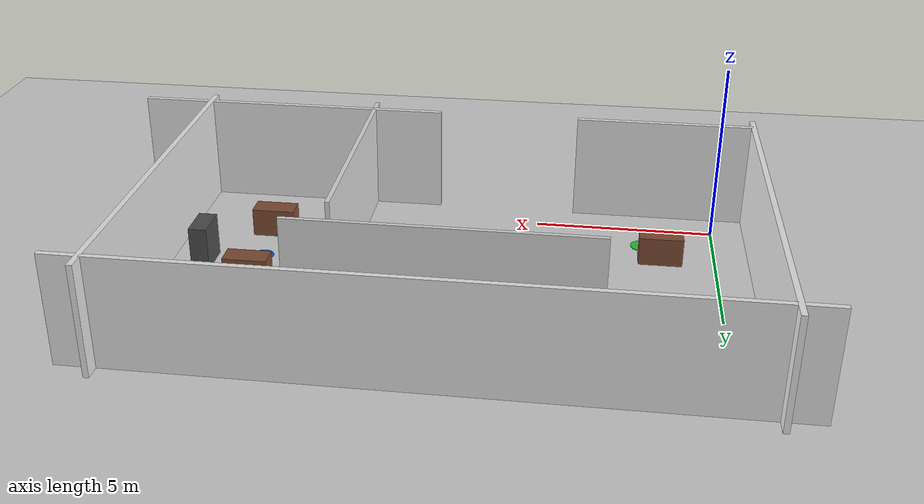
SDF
<?xml version="1.0" ?>
<sdf version="1.8">
  <world name="office_world_professional">

    <!-- Scene settings -->
    <scene>
      <ambient>0.6 0.6 0.6 1</ambient>
      <background>0.7 0.85 1.0 1</background>
      <shadows>true</shadows>
    </scene>

    <!-- Physics -->
    <physics name="1ms" type="ignored">
      <max_step_size>0.001</max_step_size>
      <real_time_factor>1.0</real_time_factor>
    </physics>

    <!-- Plugins -->
    <plugin filename="gz-sim-physics-system" name="gz::sim::systems::Physics"/>
    <plugin filename="gz-sim-user-commands-system" name="gz::sim::systems::UserCommands"/>
    <plugin filename="gz-sim-scene-broadcaster-system" name="gz::sim::systems::SceneBroadcaster"/>
    <plugin filename="gz-sim-sensors-system" name="gz::sim::systems::Sensors">
      <render_engine>ogre2</render_engine>
    </plugin>
    <plugin filename="gz-sim-contact-system" name="gz::sim::systems::Contact"/>

    <!-- Lighting -->
    <light type="directional" name="sun">
      <cast_shadows>true</cast_shadows>
      <pose>0 0 10 0 0 0</pose>
      <diffuse>0.9 0.9 0.9 1</diffuse>
      <specular>0.2 0.2 0.2 1</specular>
      <direction>-0.3 -0.3 -1</direction>
    </light>

    <!-- Ground plane -->
    <model name="ground_plane">
      <static>true</static>
      <link name="link">
        <collision name="collision">
          <geometry>
            <plane><normal>0 0 1</normal><size>30 25</size></plane>
          </geometry>
        </collision>
        <visual name="visual">
          <geometry>
            <plane><normal>0 0 1</normal><size>30 25</size></plane>
          </geometry>
          <material>
            <ambient>0.7 0.7 0.7 1</ambient>
            <diffuse>0.8 0.8 0.8 1</diffuse>
          </material>
        </visual>
      </link>
    </model>

    <!-- Outer walls (16m x 10m) -->
    <!-- North Wall -->
    <model name="wall_north">
      <static>true</static>
      <pose>7 9 1.5 0 0 0</pose>
      <link name="link">
        <collision name="collision">
          <geometry><box><size>18 0.15 3</size></box></geometry>
        </collision>
        <visual name="visual">
          <geometry><box><size>18 0.15 3</size></box></geometry>
          <material><ambient>0.9 0.9 0.9 1</ambient></material>
        </visual>
      </link>
    </model>

    <!-- South Wall Left -->
    <model name="wall_south_left">
      <static>true</static>
      <pose>1.5 -1 1.5 0 0 0</pose>
      <link name="link">
        <collision name="collision">
          <geometry><box><size>5 0.15 3</size></box></geometry>
        </collision>
        <visual name="visual">
          <geometry><box><size>5 0.15 3</size></box></geometry>
          <material><ambient>0.9 0.9 0.9 1</ambient></material>
        </visual>
      </link>
    </model>

    <!-- South Wall Right -->
    <model name="wall_south_right">
      <static>true</static>
      <pose>12.5 -1 1.5 0 0 0</pose>
      <link name="link">
        <collision name="collision">
          <geometry><box><size>9 0.15 3</size></box></geometry>
        </collision>
        <visual name="visual">
          <geometry><box><size>9 0.15 3</size></box></geometry>
          <material><ambient>0.9 0.9 0.9 1</ambient></material>
        </visual>
      </link>
    </model>

    <!-- West Wall -->
    <model name="wall_west">
      <static>true</static>
      <pose>-1 4 1.5 0 0 0</pose>
      <link name="link">
        <collision name="collision">
          <geometry><box><size>0.15 11 3</size></box></geometry>
        </collision>
        <visual name="visual">
          <geometry><box><size>0.15 11 3</size></box></geometry>
          <material><ambient>0.9 0.9 0.9 1</ambient></material>
        </visual>
      </link>
    </model>

    <!-- East Wall -->
    <model name="wall_east">
      <static>true</static>
      <pose>15 4 1.5 0 0 0</pose>
      <link name="link">
        <collision name="collision">
          <geometry><box><size>0.15 11 3</size></box></geometry>
        </collision>
        <visual name="visual">
          <geometry><box><size>0.15 11 3</size></box></geometry>
          <material><ambient>0.9 0.9 0.9 1</ambient></material>
        </visual>
      </link>
    </model>

    <!-- Interior Wall (Storage) -->
    <model name="interior_wall_storage">
      <static>true</static>
      <pose>7 6.5 1.5 0 0 0</pose>
      <link name="link">
        <collision name="collision">
          <geometry><box><size>8 0.12 3</size></box></geometry>
        </collision>
        <visual name="visual">
          <geometry><box><size>8 0.12 3</size></box></geometry>
          <material><ambient>0.85 0.85 0.85 1</ambient></material>
        </visual>
      </link>
    </model>

    <!-- Interior Wall (Office) -->
    <model name="interior_wall_office">
      <static>true</static>
      <pose>10 2 1.5 0 0 0</pose>
      <link name="link">
        <collision name="collision">
          <geometry><box><size>0.12 7 3</size></box></geometry>
        </collision>
        <visual name="visual">
          <geometry><box><size>0.12 7 3</size></box></geometry>
          <material><ambient>0.85 0.85 0.85 1</ambient></material>
        </visual>
      </link>
    </model>

    <!-- Waypoint markers (visual only) -->
    <!-- Reception marker -->
    <model name="waypoint_reception">
      <static>true</static>
      <pose>2 1 0.01 0 0 0</pose>
      <link name="link">
        <visual name="marker">
          <geometry><cylinder><radius>0.3</radius><length>0.02</length></cylinder></geometry>
          <material><ambient>0.1 0.8 0.2 1</ambient></material>
        </visual>
      </link>
    </model>

    <!-- Storage marker -->
    <model name="waypoint_storage">
      <static>true</static>
      <pose>4 7.5 0.01 0 0 0</pose>
      <link name="link">
        <visual name="marker">
          <geometry><cylinder><radius>0.3</radius><length>0.02</length></cylinder></geometry>
          <material><ambient>0.8 0.5 0.1 1</ambient></material>
        </visual>
      </link>
    </model>

    <!-- Office marker -->
    <model name="waypoint_office">
      <static>true</static>
      <pose>12.5 3 0.01 0 0 0</pose>
      <link name="link">
        <visual name="marker">
          <geometry><cylinder><radius>0.3</radius><length>0.02</length></cylinder></geometry>
          <material><ambient>0.1 0.3 0.9 1</ambient></material>
        </visual>
      </link>
    </model>

    <!-- Simple furniture (boxes) -->
    <!-- Reception desk -->
    <model name="desk_reception">
      <static>true</static>
      <pose>1.5 1.8 0.4 0 0 0</pose>
      <link name="link">
        <collision name="collision">
          <geometry><box><size>1.2 0.6 0.8</size></box></geometry>
        </collision>
        <visual name="visual">
          <geometry><box><size>1.2 0.6 0.8</size></box></geometry>
          <material><ambient>0.5 0.3 0.2 1</ambient></material>
        </visual>
      </link>
    </model>

    <!-- Break table -->
    <model name="table_break">
      <static>true</static>
      <pose>7 3.5 0.4 0 0 0</pose>
      <link name="link">
        <collision name="collision">
          <geometry><box><size>1.2 0.8 0.8</size></box></geometry>
        </collision>
        <visual name="visual">
          <geometry><box><size>1.2 0.8 0.8</size></box></geometry>
          <material><ambient>0.5 0.3 0.2 1</ambient></material>
        </visual>
      </link>
    </model>

    <!-- Storage shelf -->
    <model name="shelf_storage">
      <static>true</static>
      <pose>3 8.5 0.75 0 0 0</pose>
      <link name="link">
        <collision name="collision">
          <geometry><box><size>2 0.4 1.5</size></box></geometry>
        </collision>
        <visual name="visual">
          <geometry><box><size>2 0.4 1.5</size></box></geometry>
          <material><ambient>0.4 0.4 0.4 1</ambient></material>
        </visual>
      </link>
    </model>

    <!-- Office desk 1 -->
    <model name="desk_office1">
      <static>true</static>
      <pose>12.5 1.5 0.4 0 0 0</pose>
      <link name="link">
        <collision name="collision">
          <geometry><box><size>1.2 0.6 0.8</size></box></geometry>
        </collision>
        <visual name="visual">
          <geometry><box><size>1.2 0.6 0.8</size></box></geometry>
          <material><ambient>0.5 0.3 0.2 1</ambient></material>
        </visual>
      </link>
    </model>

    <!-- Office desk 2 -->
    <model name="desk_office2">
      <static>true</static>
      <pose>12.5 4.5 0.4 0 0 0</pose>
      <link name="link">
        <collision name="collision">
          <geometry><box><size>1.2 0.6 0.8</size></box></geometry>
        </collision>
        <visual name="visual">
          <geometry><box><size>1.2 0.6 0.8</size></box></geometry>
          <material><ambient>0.5 0.3 0.2 1</ambient></material>
        </visual>
      </link>
    </model>

    <!-- Cabinet -->
    <model name="cabinet">
      <static>true</static>
      <pose>14 3.5 0.6 0 0 0</pose>
      <link name="link">
        <collision name="collision">
          <geometry><box><size>0.5 1.0 1.2</size></box></geometry>
        </collision>
        <visual name="visual">
          <geometry><box><size>0.5 1.0 1.2</size></box></geometry>
          <material><ambient>0.3 0.3 0.3 1</ambient></material>
        </visual>
      </link>
    </model>

  </world>
</sdf>
